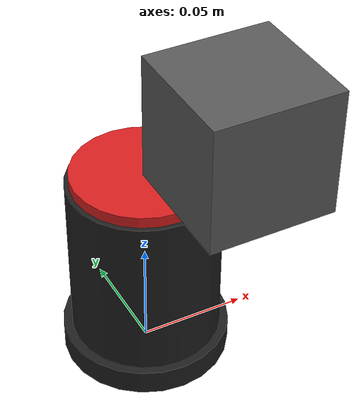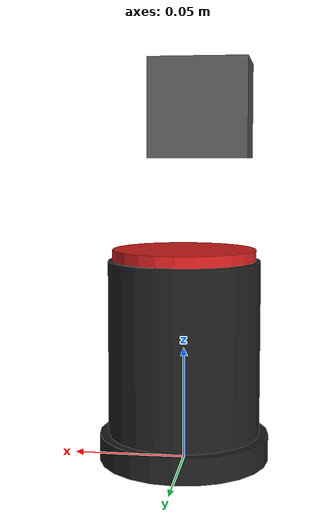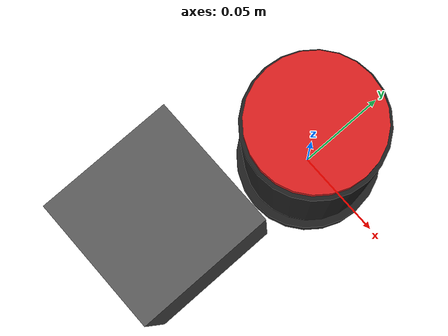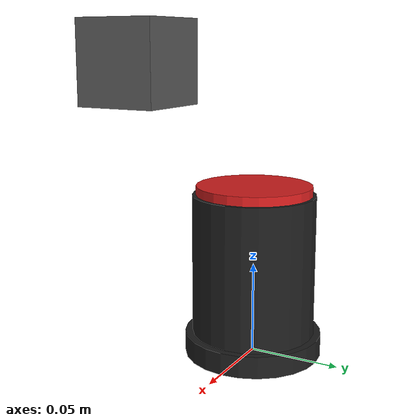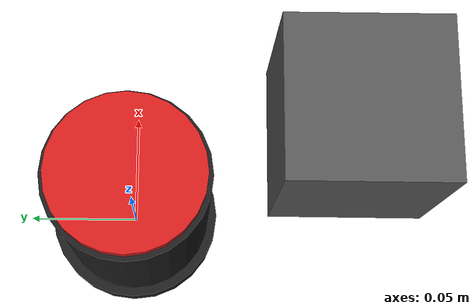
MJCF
<?xml version="1.0" encoding="UTF-8"?>
<!-- Clean-room LIBERO wrapper for the primitive VLABench Button entity.
     The site is a real MuJoCo touch sensor; the three task aliases only
     change the candidate material. -->
<mujoco model="libero_vlabench_density_button">
  <compiler angle="radian"/>
  <worldbody>
    <body>
      <body name="object">
        <geom name="button_pedestal" type="cylinder" size="0.034 0.042"
              pos="0 0 0.048" mass="0.03" group="1"
              rgba="0.12 0.12 0.12 1"/>
        <geom name="button_cap" type="cylinder" size="0.032 0.010"
              pos="0 0 0.085" mass="0.01" group="1"
              rgba="0.85 0.12 0.12 1"
              solref="0.002 1"/>
        <geom name="button_base" type="cylinder" size="0.038 0.006"
              pos="0 0 0.006" mass="0.03" group="1"
              rgba="0.12 0.12 0.12 1"/>
        <geom name="candidate_visual" type="box" size="0.025 0.025 0.025"
              pos="0 -0.075 0.160" mass="0.08" group="1"
              contype="0" conaffinity="0" rgba="0.35 0.35 0.35 1"/>
        <geom name="candidate_collision" type="box" size="0.024 0.024 0.024"
              pos="0 -0.075 0.160" mass="0.08"
              contype="0" conaffinity="0" rgba="0 0 0 0"/>
        <site name="button_touch_site" type="cylinder" size="0.032 0.010"
              pos="0 0 0.085" rgba="0 1 0 0"/>
        <site name="button_default_site" pos="0 0 0.085" size="0.005"
              rgba="1 0 0 0"/>
      </body>
    </body>
  </worldbody>
  <sensor>
    <touch name="button_touch" site="button_touch_site"/>
  </sensor>
</mujoco>
